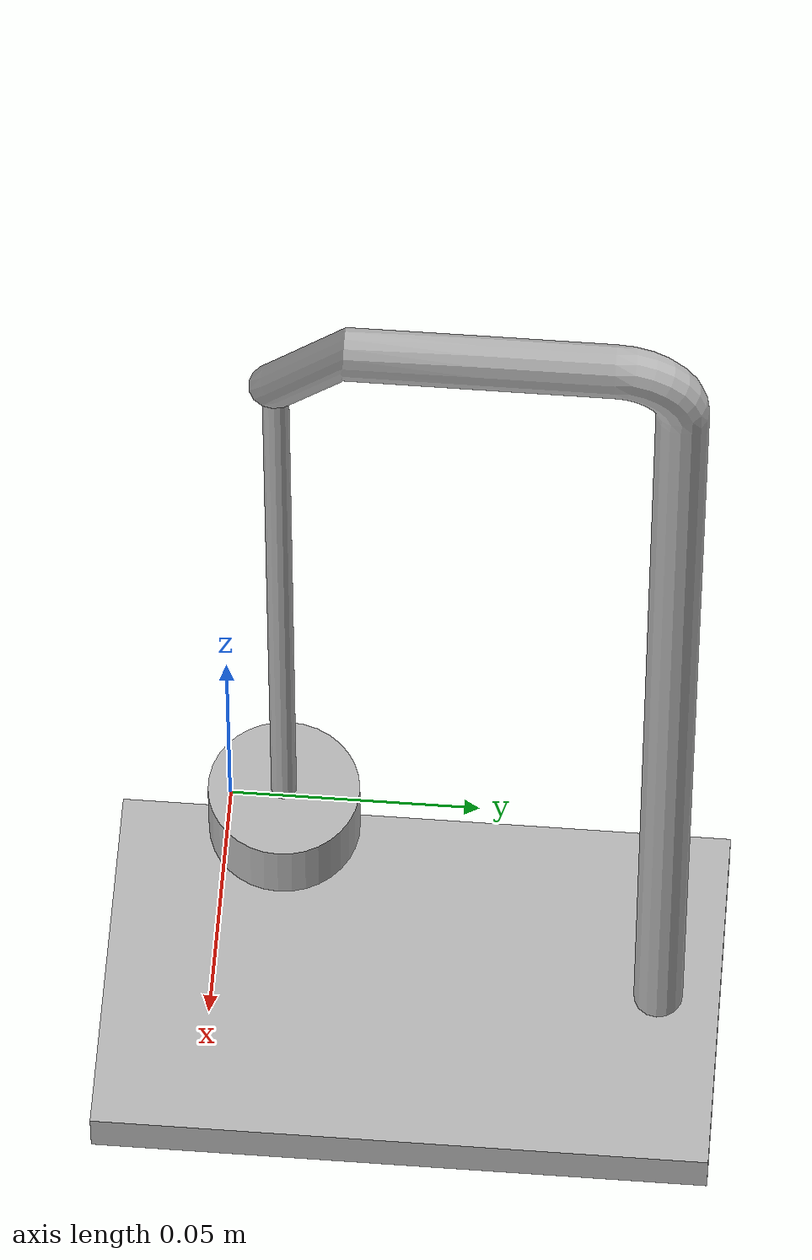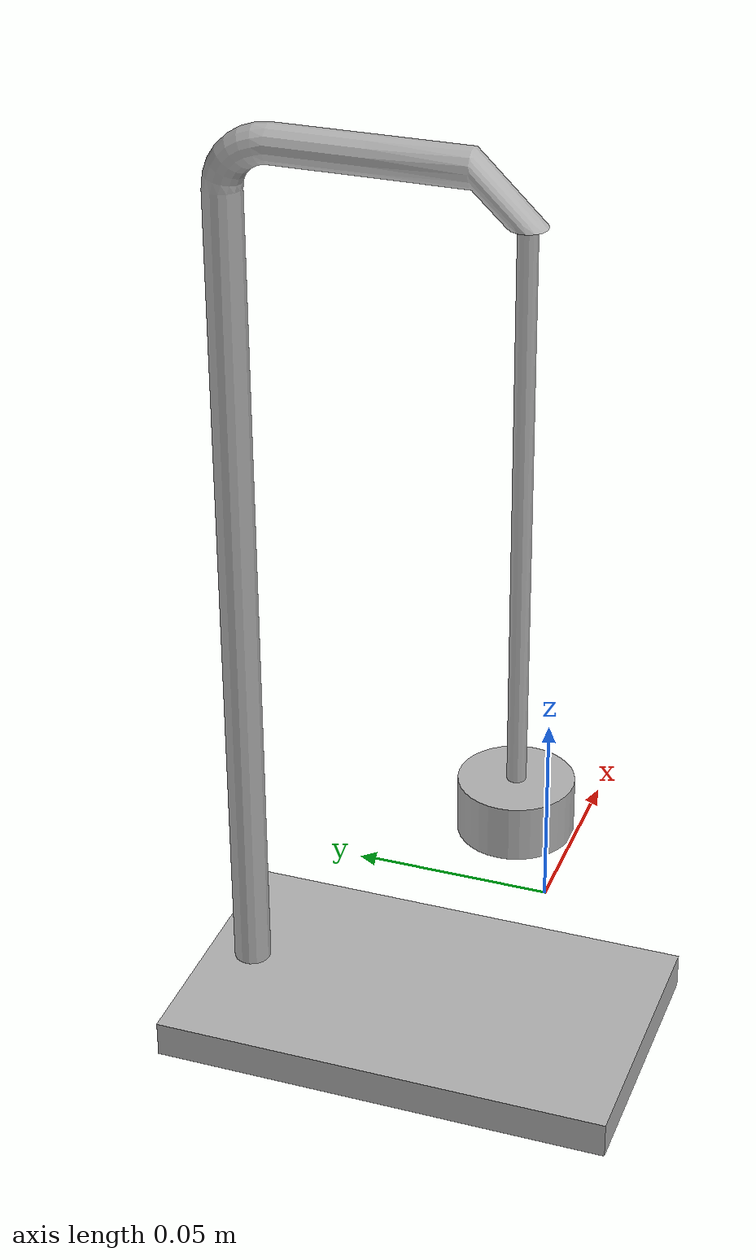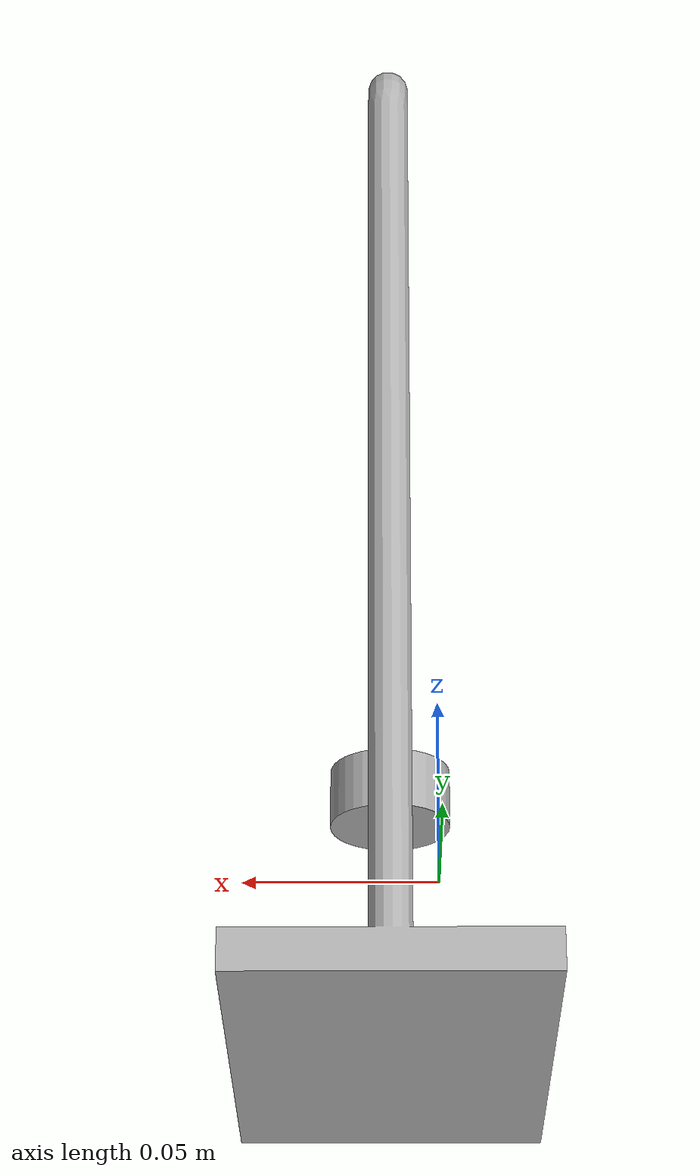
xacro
<?xml version="1.0" ?>
<robot name="simple_pedulum" xmlns:xacro="http://www.ros.org/wiki/xacro">

<xacro:include filename="$(find simple_pedulum_description)/urdf/materials.xacro" />
<xacro:include filename="$(find simple_pedulum_description)/urdf/simple_pedulum.trans" />
<xacro:include filename="$(find simple_pedulum_description)/urdf/simple_pedulum.gazebo" />
<link name="base_link">
  <inertial>
    <origin xyz="0.012500000038143316 0.045846826121013436 -0.024183593613065192" rpy="0 0 0"/>
    <mass value="0.9254518780839054"/>
    <inertia ixx="0.00585" iyy="0.004914" izz="0.001627" ixy="-0.0" iyz="-0.000767" ixz="-0.0"/>
  </inertial>
  <visual>
    <origin xyz="0 0 0" rpy="0 0 0"/>
    <geometry>
      <mesh filename="package://simple_pedulum_description/meshes/base_link.stl" scale="0.001 0.001 0.001"/>
    </geometry>
    <material name="silver"/>
  </visual>
  <collision>
    <origin xyz="0 0 0" rpy="0 0 0"/>
    <geometry>
      <mesh filename="package://simple_pedulum_description/meshes/base_link.stl" scale="0.001 0.001 0.001"/>
    </geometry>
  </collision>
</link>

<link name="pendulum_1">
  <inertial>
    <origin xyz="1.8632134030083236e-10 1.7881393241103716e-10 -0.13956521697300156" rpy="0 0 0"/>
    <mass value="0.10635272949009089"/>
    <inertia ixx="0.000173" iyy="0.000173" izz="9e-06" ixy="-0.0" iyz="-0.0" ixz="-0.0"/>
  </inertial>
  <visual>
    <origin xyz="-0.0125 -0.012 -0.175" rpy="0 0 0"/>
    <geometry>
      <mesh filename="package://simple_pedulum_description/meshes/pendulum_1.stl" scale="0.001 0.001 0.001"/>
    </geometry>
    <material name="silver"/>
  </visual>
  <collision>
    <origin xyz="-0.0125 -0.012 -0.175" rpy="0 0 0"/>
    <geometry>
      <mesh filename="package://simple_pedulum_description/meshes/pendulum_1.stl" scale="0.001 0.001 0.001"/>
    </geometry>
  </collision>
</link>

<joint name="Ball2" type="continuous">
  <origin xyz="0.0125 0.012 0.175" rpy="0 0 0"/>
  <parent link="base_link"/>
  <child link="pendulum_1"/>
</joint>

</robot>

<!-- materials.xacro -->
<robot name="simple_pedulum" xmlns:xacro="http://www.ros.org/wiki/xacro" >

<material name="silver">
  <color rgba="0.700 0.700 0.700 1.000"/>
</material>

</robot>

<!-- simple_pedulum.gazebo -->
<robot name="simple_pedulum" xmlns:xacro="http://www.ros.org/wiki/xacro" >

<xacro:property name="body_color" value="Gazebo/Silver" />

<gazebo>
  <plugin name="control" filename="libgazebo_ros_control.so"/>
</gazebo>
<gazebo reference="base_link">
  <material>${body_color}</material>
  <mu1>0.2</mu1>
  <mu2>0.2</mu2>
  <selfCollide>true</selfCollide>
  <gravity>true</gravity>
</gazebo>

<gazebo reference="pendulum_1">
  <material>${body_color}</material>
  <mu1>0.2</mu1>
  <mu2>0.2</mu2>
  <selfCollide>true</selfCollide>
</gazebo>

</robot>
